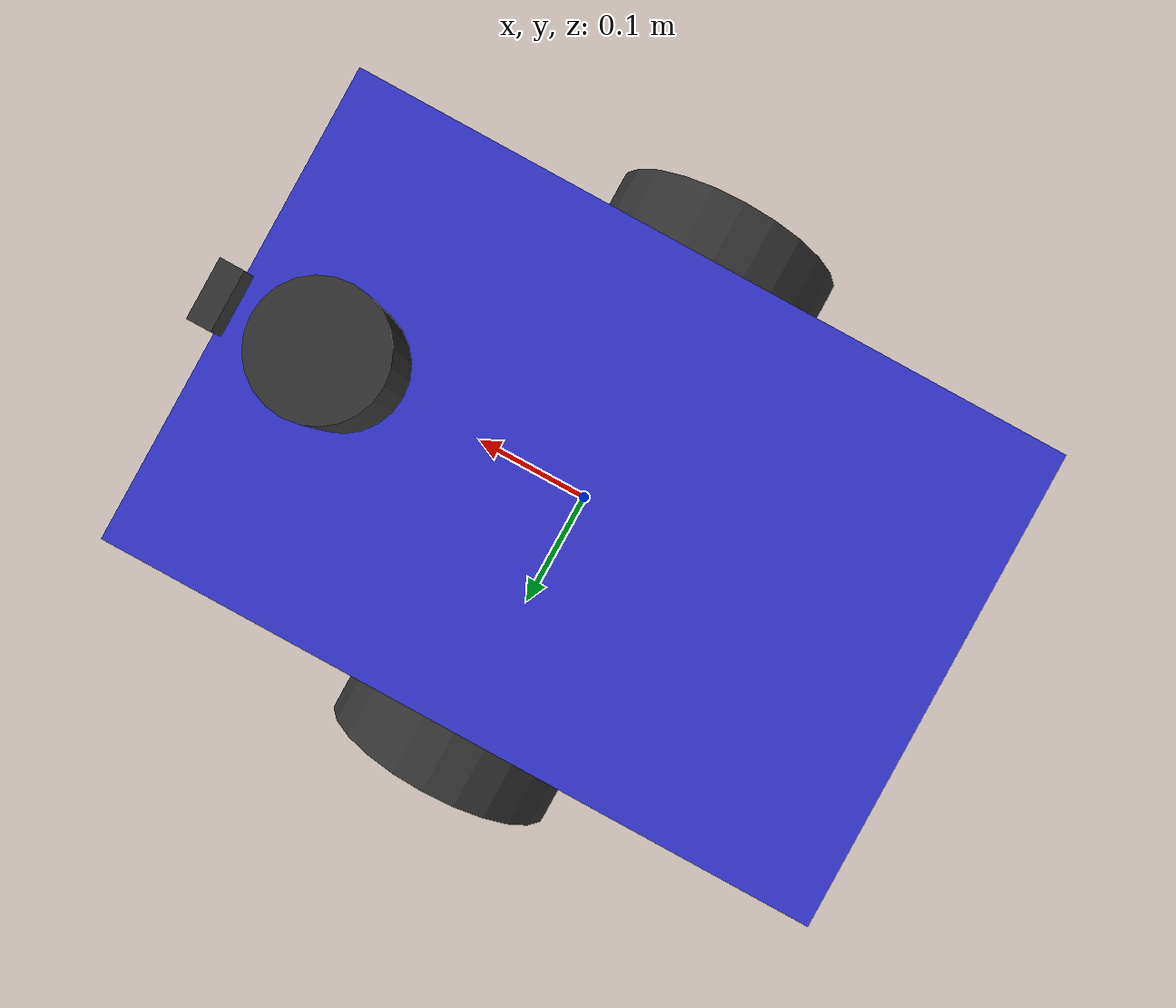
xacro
<?xml version="1.0"?>
<!--
Complete mobile robot with lidar, camera, IMU, and differential drive
Demonstrates sensor plugins and robot control in Gazebo
-->
<robot xmlns:xacro="http://www.ros.org/wiki/xacro" name="sensor_robot">

  <!-- Properties -->
  <xacro:property name="base_length" value="0.6"/>
  <xacro:property name="base_width" value="0.4"/>
  <xacro:property name="base_height" value="0.1"/>
  <xacro:property name="wheel_radius" value="0.1"/>
  <xacro:property name="wheel_width" value="0.05"/>
  <xacro:property name="wheel_separation" value="0.45"/>

  <!-- Base Link -->
  <link name="base_link">
    <visual>
      <origin xyz="0 0 0.05" rpy="0 0 0"/>
      <geometry>
        <box size="${base_length} ${base_width} ${base_height}"/>
      </geometry>
      <material name="blue"><color rgba="0.2 0.2 0.8 1"/></material>
    </visual>
    <collision>
      <origin xyz="0 0 0.05" rpy="0 0 0"/>
      <geometry>
        <box size="${base_length} ${base_width} ${base_height}"/>
      </geometry>
    </collision>
    <inertial>
      <mass value="10"/>
      <inertia ixx="0.083" ixy="0" ixz="0" iyy="0.158" iyz="0" izz="0.225"/>
    </inertial>
  </link>

  <!-- Wheels (simplified - using macro would be better) -->
  <link name="left_wheel">
    <visual>
      <origin xyz="0 0 0" rpy="1.5708 0 0"/>
      <geometry><cylinder radius="${wheel_radius}" length="${wheel_width}"/></geometry>
      <material name="black"><color rgba="0.2 0.2 0.2 1"/></material>
    </visual>
    <collision>
      <origin xyz="0 0 0" rpy="1.5708 0 0"/>
      <geometry><cylinder radius="${wheel_radius}" length="${wheel_width}"/></geometry>
    </collision>
    <inertial>
      <mass value="0.5"/>
      <inertia ixx="0.00125" ixy="0" ixz="0" iyy="0.00125" iyz="0" izz="0.0025"/>
    </inertial>
  </link>

  <joint name="left_wheel_joint" type="continuous">
    <parent link="base_link"/>
    <child link="left_wheel"/>
    <origin xyz="0 ${wheel_separation/2} 0" rpy="0 0 0"/>
    <axis xyz="0 1 0"/>
  </joint>

  <link name="right_wheel">
    <visual>
      <origin xyz="0 0 0" rpy="1.5708 0 0"/>
      <geometry><cylinder radius="${wheel_radius}" length="${wheel_width}"/></geometry>
      <material name="black"><color rgba="0.2 0.2 0.2 1"/></material>
    </visual>
    <collision>
      <origin xyz="0 0 0" rpy="1.5708 0 0"/>
      <geometry><cylinder radius="${wheel_radius}" length="${wheel_width}"/></geometry>
    </collision>
    <inertial>
      <mass value="0.5"/>
      <inertia ixx="0.00125" ixy="0" ixz="0" iyy="0.00125" iyz="0" izz="0.0025"/>
    </inertial>
  </link>

  <joint name="right_wheel_joint" type="continuous">
    <parent link="base_link"/>
    <child link="right_wheel"/>
    <origin xyz="0 ${-wheel_separation/2} 0" rpy="0 0 0"/>
    <axis xyz="0 1 0"/>
  </joint>

  <!-- Lidar Link -->
  <link name="lidar_link">
    <visual>
      <geometry><cylinder radius="0.05" length="0.07"/></geometry>
      <material name="black"/>
    </visual>
    <collision>
      <geometry><cylinder radius="0.05" length="0.07"/></geometry>
    </collision>
    <inertial>
      <mass value="0.2"/>
      <inertia ixx="0.001" ixy="0" ixz="0" iyy="0.001" iyz="0" izz="0.001"/>
    </inertial>
  </link>

  <joint name="lidar_joint" type="fixed">
    <parent link="base_link"/>
    <child link="lidar_link"/>
    <origin xyz="0.2 0 0.15" rpy="0 0 0"/>
  </joint>

  <!-- Camera Link -->
  <link name="camera_link">
    <visual>
      <geometry><box size="0.02 0.05 0.02"/></geometry>
      <material name="black"/>
    </visual>
    <collision>
      <geometry><box size="0.02 0.05 0.02"/></geometry>
    </collision>
    <inertial>
      <mass value="0.1"/>
      <inertia ixx="0.0001" ixy="0" ixz="0" iyy="0.0001" iyz="0" izz="0.0001"/>
    </inertial>
  </link>

  <joint name="camera_joint" type="fixed">
    <parent link="base_link"/>
    <child link="camera_link"/>
    <origin xyz="0.3 0 0.12" rpy="0 0 0"/>
  </joint>

  <!-- IMU Link -->
  <link name="imu_link">
    <inertial>
      <mass value="0.01"/>
      <inertia ixx="0.00001" ixy="0" ixz="0" iyy="0.00001" iyz="0" izz="0.00001"/>
    </inertial>
  </link>

  <joint name="imu_joint" type="fixed">
    <parent link="base_link"/>
    <child link="imu_link"/>
    <origin xyz="0 0 0.05" rpy="0 0 0"/>
  </joint>

  <!-- Gazebo Plugins -->

  <!-- Differential Drive Controller -->
  <gazebo>
    <plugin name="diff_drive" filename="libgazebo_ros_diff_drive.so">
      <ros>
        <namespace>/</namespace>
        <remapping>cmd_vel:=cmd_vel</remapping>
        <remapping>odom:=odom</remapping>
      </ros>
      <left_joint>left_wheel_joint</left_joint>
      <right_joint>right_wheel_joint</right_joint>
      <wheel_separation>${wheel_separation}</wheel_separation>
      <wheel_diameter>${2*wheel_radius}</wheel_diameter>
      <max_wheel_torque>20</max_wheel_torque>
      <max_wheel_acceleration>1.0</max_wheel_acceleration>
      <publish_odom>true</publish_odom>
      <publish_odom_tf>true</publish_odom_tf>
      <publish_wheel_tf>false</publish_wheel_tf>
      <odometry_frame>odom</odometry_frame>
      <robot_base_frame>base_link</robot_base_frame>
      <update_rate>50</update_rate>
    </plugin>
  </gazebo>

  <!-- Lidar Sensor -->
  <gazebo reference="lidar_link">
    <sensor name="lidar" type="ray">
      <always_on>true</always_on>
      <update_rate>10</update_rate>
      <visualize>true</visualize>
      <ray>
        <scan>
          <horizontal>
            <samples>360</samples>
            <resolution>1.0</resolution>
            <min_angle>-3.14159</min_angle>
            <max_angle>3.14159</max_angle>
          </horizontal>
        </scan>
        <range>
          <min>0.15</min>
          <max>10.0</max>
          <resolution>0.01</resolution>
        </range>
        <noise>
          <type>gaussian</type>
          <mean>0.0</mean>
          <stddev>0.01</stddev>
        </noise>
      </ray>
      <plugin name="lidar_plugin" filename="libgazebo_ros_ray_sensor.so">
        <ros>
          <remapping>~/out:=scan</remapping>
        </ros>
        <output_type>sensor_msgs/LaserScan</output_type>
        <frame_name>lidar_link</frame_name>
      </plugin>
    </sensor>
  </gazebo>

  <!-- Camera Sensor -->
  <gazebo reference="camera_link">
    <sensor name="camera" type="camera">
      <always_on>true</always_on>
      <update_rate>30</update_rate>
      <camera>
        <horizontal_fov>1.57</horizontal_fov>
        <image>
          <width>640</width>
          <height>480</height>
          <format>R8G8B8</format>
        </image>
        <clip>
          <near>0.05</near>
          <far>100</far>
        </clip>
      </camera>
      <plugin name="camera_plugin" filename="libgazebo_ros_camera.so">
        <ros>
          <remapping>~/image_raw:=camera/image_raw</remapping>
          <remapping>~/camera_info:=camera/camera_info</remapping>
        </ros>
        <camera_name>camera</camera_name>
        <frame_name>camera_link</frame_name>
      </plugin>
    </sensor>
  </gazebo>

  <!-- IMU Sensor -->
  <gazebo reference="imu_link">
    <sensor name="imu" type="imu">
      <always_on>true</always_on>
      <update_rate>100</update_rate>
      <plugin name="imu_plugin" filename="libgazebo_ros_imu_sensor.so">
        <ros>
          <remapping>~/out:=imu/data</remapping>
        </ros>
        <frame_name>imu_link</frame_name>
      </plugin>
    </sensor>
  </gazebo>

  <!-- Material colors for Gazebo -->
  <gazebo reference="base_link">
    <material>Gazebo/Blue</material>
  </gazebo>

  <gazebo reference="left_wheel">
    <material>Gazebo/Black</material>
  </gazebo>

  <gazebo reference="right_wheel">
    <material>Gazebo/Black</material>
  </gazebo>

</robot>
